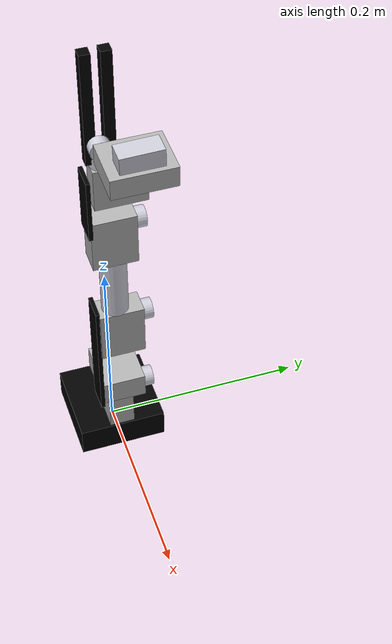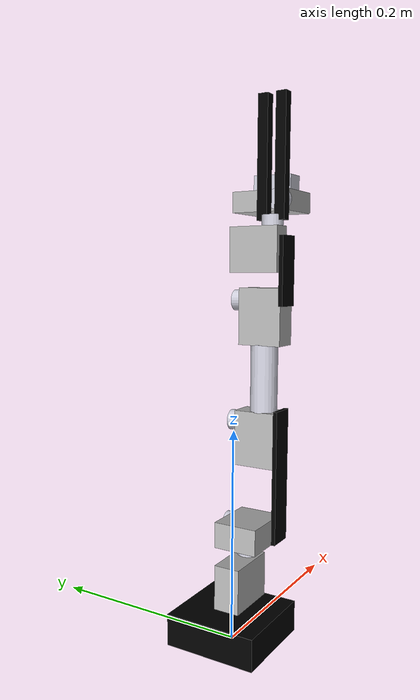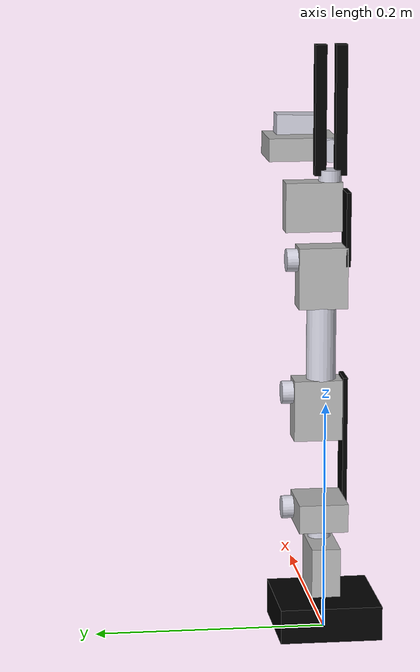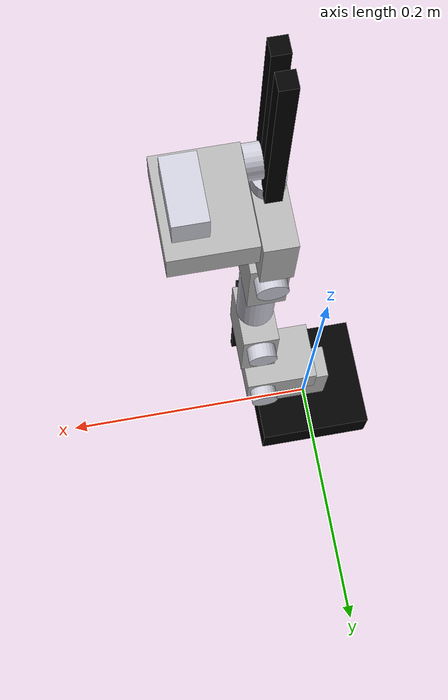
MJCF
<mujoco model="robot_arm">
  <compiler angle="radian"/>

  <worldbody>
    <geom size="0.044 0.044 0.015" pos="0 0 0.015" type="box" rgba="0 0 0 1"/>
    <geom size="0.027 0.0125 0.0215" pos="0.015 0 0.0515" type="box" rgba="0.7 0.7 0.7 1"/>
    <body name="servo1_horn_link" pos="0.03 0 0.078">
      <inertial pos="0 0 0.009" mass="1.8" diaginertia="0.0021458 0.0021458 0.002"/>
      <joint name="joint1" pos="0 0 0" axis="0 0 1" range="-1.57 1.57" actuatorfrcrange="-1 1"/>
      <geom size="0.01 0.005" type="cylinder" rgba="0.8 0.8 0.85 1"/>
      <geom size="0.027 0.0125 0.0215" pos="0 0 0.018" quat="0.707388 0.706825 0 0" type="box" rgba="0.7 0.7 0.7 1"/>
      <body name="servo2_horn_link" pos="0.015 0.0265 0.0179789" quat="0.707388 0.706825 0 0">
        <inertial pos="0.0036741 0.0467992 0.0156675" quat="0.592018 0.803925 -0.0564663 -0.00557205" mass="2.7" diaginertia="0.00688368 0.00687595 0.00300773"/>
        <joint name="joint2" pos="0 0 0" axis="0 0 -1" range="-1.57 1.57" actuatorfrcrange="-1 1"/>
        <geom size="0.01 0.005" type="cylinder" rgba="0.8 0.8 0.85 1"/>
        <geom size="0.002 0.0125 0.065" pos="0.00397611 0.0527 0.05" quat="0.500398 -0.5 0.5 0.499602" type="box" rgba="0 0 0 1"/>
        <geom size="0.027 0.0125 0.0215" pos="0.0070223 0.0876976 0.0270024" quat="0.707388 -0.000562864 0 0.706825" type="box" rgba="0.7 0.7 0.7 1"/>
        <body name="servo3_horn_link" pos="0.00705534 0.102676 0.00049049" quat="0.707388 -0.000562864 0 0.706825">
          <inertial pos="0.049 0 0.0200157" quat="0.564438 0.425922 0.425922 0.564438" mass="2.7" diaginertia="0.00834865 0.00818591 0.00316273"/>
          <joint name="joint3" pos="0 0 0" axis="0 0 1" range="-1.57 1.57" actuatorfrcrange="-1 1"/>
          <geom size="0.01 0.005" type="cylinder" rgba="0.8 0.8 0.85 1"/>
          <geom size="0.013 0.0325" pos="0.044 0 0.03" quat="0.707388 0 0.706825 0" type="cylinder" rgba="0.8 0.8 0.85 1"/>
          <geom size="0.027 0.0125 0.0215" pos="0.103 0 0.030047" quat="0.000796327 0 1 0" type="box" rgba="0.7 0.7 0.7 1"/>
          <body name="servo4_horn_link" pos="0.118042 0 0.00357091" quat="0.000796327 0 1 0">
            <inertial pos="-0.025 0 -0.0119947" quat="0.586727 0.394654 0.394654 0.586727" mass="2.7" diaginertia="0.00421798 0.00418846 0.00302951"/>
            <joint name="joint4" pos="0 0 0" axis="0 0 1" range="-1.57 1.57" actuatorfrcrange="-1 1"/>
            <geom size="0.01 0.005" type="cylinder" rgba="0.8 0.8 0.85 1"/>
            <geom size="0.002 0.0125 0.0325" pos="-0.0275239 0 -0.048" quat="0.707388 0 -0.706825 0" type="box" rgba="0 0 0 1"/>
            <geom size="0.02475 0.01002 0.0215" pos="-0.0475 0 -0.0179841" quat="0.707388 0 -0.706825 0" type="box" rgba="0.7 0.7 0.7 1"/>
            <body name="servo5_horn_link" pos="-0.0740119 0 -0.032963" quat="0.707388 0 -0.706825 0">
              <inertial pos="0.00415981 -0.0231434 0.0138519" quat="0.750848 0.582561 0.251506 -0.183287" mass="6.3" diaginertia="0.0166691 0.0158159 0.00838354"/>
              <joint name="joint5" pos="0 0 0" axis="0 0 1" range="-1.57 1.57" actuatorfrcrange="-1 1"/>
              <geom size="0.01 0.005" type="cylinder" rgba="0.8 0.8 0.85 1"/>
              <geom size="0.005 0.005 0.0565" pos="-0.009 0 0.0565" type="box" rgba="0 0 0 1"/>
              <geom size="0.02475 0.01002 0.03" pos="0.021008 -0.04 0.02" quat="0.500398 0.5 0.499602 0.5" type="box" rgba="0.7 0.7 0.7 1"/>
              <geom size="0.01 0.005" pos="-0.00191241 -0.0100018 0.0199817" quat="0.000844632 0.000281544 0.707107 0.707107" type="cylinder" rgba="0.8 0.8 0.85 1"/>
              <geom size="0.01 0.02 0.01" pos="0.0209865 -0.05 0.037" quat="0.00763705 0.707347 0.706784 0.00763097" type="box" rgba="0.8 0.8 0.85 1"/>
              <geom size="0.005 0.005 0.0565" pos="0.009 0 0.0565" type="box" rgba="0 0 0 1"/>
            </body>
          </body>
        </body>
      </body>
    </body>
  </worldbody>

  <actuator>
    <position name="servo1" joint="joint1" kp="100"/>
    <position name="servo2" joint="joint2" kp="100"/>
    <position name="servo3" joint="joint3" kp="100"/>
    <position name="servo4" joint="joint4" kp="100"/>
    <position name="servo5" joint="joint5" kp="100"/>
  </actuator>
</mujoco>
